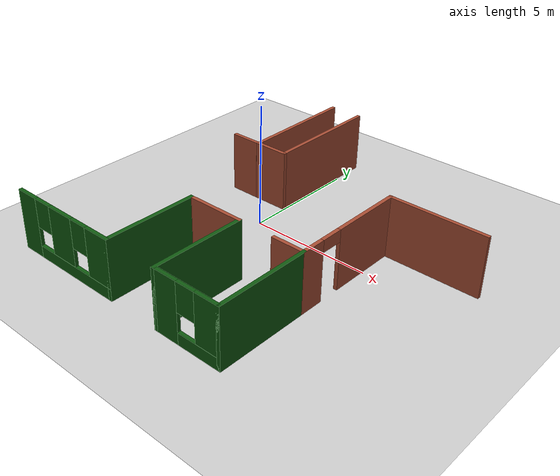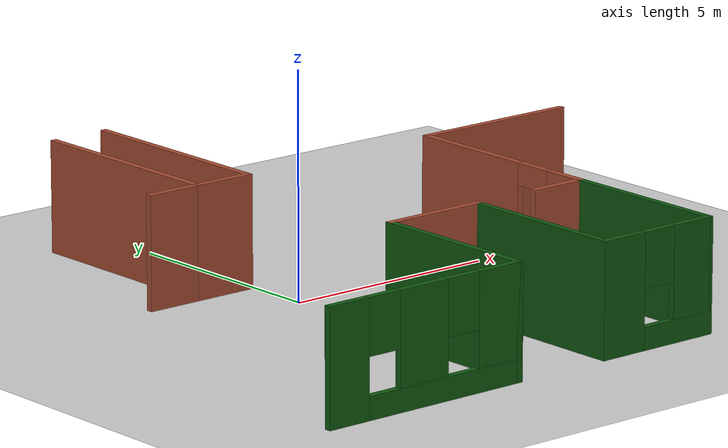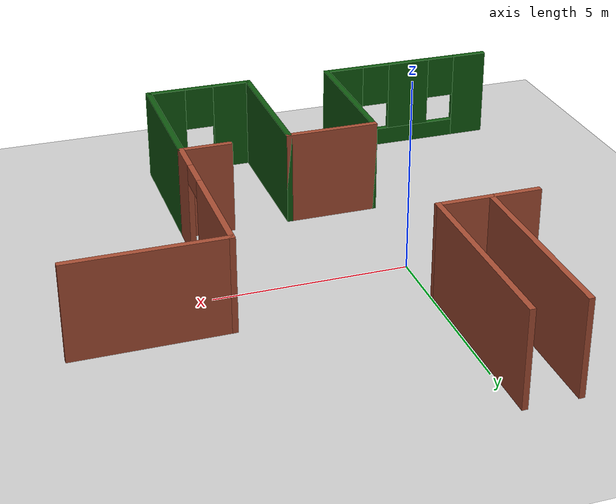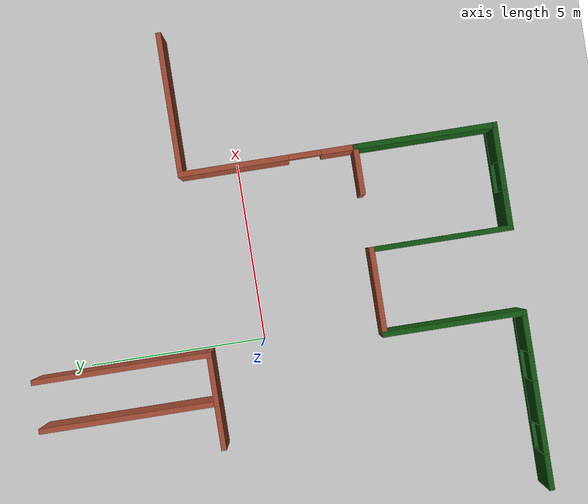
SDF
<sdf version="1.6">
 <world name="default">
  <model name="ground_plane">
   <static>1</static>
   <link name="link">
    <collision name="collision">
     <geometry><plane><normal>0 0 1</normal><size>100 100</size></plane></geometry>
     <surface>
      <contact><collide_bitmask>65535</collide_bitmask></contact>
      <friction><ode><mu>100</mu><mu2>50</mu2></ode></friction>
     </surface>
    </collision>
    <visual name="visual">
     <cast_shadows>0</cast_shadows>
     <geometry><plane><normal>0 0 1</normal><size>100 100</size></plane></geometry>
     <material>
      <script><uri>file://media/materials/scripts/gazebo.material</uri><name>Gazebo/Grey</name></script>
     </material>
    </visual>
   </link>
  </model>
  <model name="apartment">
   <link name="Wall_0">
    <pose>-2.91418 -6.79442 0 0 -0 0</pose>
    <visual name="Wall_0_Visual_0">
     <pose>-1.99956 0 1.25 0 -0 0</pose>
     <geometry><box><size>1.00087 0.15 2.5</size></box></geometry>
     <material>
      <script><uri>file://media/materials/scripts/gazebo.material</uri><name>Gazebo/Grey</name></script>
      <ambient>0.0627451 0.352941 0.0627451 1</ambient>
     </material>
     <meta><layer>0</layer></meta>
    </visual>
    <visual name="Wall_0_Visual_1">
     <pose>0.500436 0 0.25 0 -0 0</pose>
     <geometry><box><size>3.99913 0.15 0.5</size></box></geometry>
     <material>
      <script><uri>file://media/materials/scripts/gazebo.material</uri><name>Gazebo/Grey</name></script>
      <ambient>0.0627451 0.352941 0.0627451 1</ambient>
     </material>
     <meta><layer>0</layer></meta>
    </visual>
    <visual name="Wall_0_Visual_2">
     <pose>-0.080142 0 1.5 0 -0 0</pose>
     <geometry><box><size>1.23797 0.15 2</size></box></geometry>
     <material>
      <script><uri>file://media/materials/scripts/gazebo.material</uri><name>Gazebo/Grey</name></script>
      <ambient>0.0627451 0.352941 0.0627451 1</ambient>
     </material>
     <meta><layer>0</layer></meta>
    </visual>
    <visual name="Wall_0_Visual_3">
     <pose>1.91942 0 1.5 0 -0 0</pose>
     <geometry><box><size>1.16116 0.15 2</size></box></geometry>
     <material>
      <script><uri>file://media/materials/scripts/gazebo.material</uri><name>Gazebo/Grey</name></script>
      <ambient>0.0627451 0.352941 0.0627451 1</ambient>
     </material>
     <meta><layer>0</layer></meta>
    </visual>
    <visual name="Wall_0_Visual_4">
     <pose>-1.09913 0 1.9 0 -0 0</pose>
     <geometry><box><size>0.8 0.15 1.2</size></box></geometry>
     <material>
      <script><uri>file://media/materials/scripts/gazebo.material</uri><name>Gazebo/Grey</name></script>
      <ambient>0.0627451 0.352941 0.0627451 1</ambient>
     </material>
     <meta><layer>0</layer></meta>
    </visual>
    <visual name="Wall_0_Visual_5">
     <pose>0.938844 0 1.9 0 -0 0</pose>
     <geometry><box><size>0.8 0.15 1.2</size></box></geometry>
     <material>
      <script><uri>file://media/materials/scripts/gazebo.material</uri><name>Gazebo/Grey</name></script>
      <ambient>0.0627451 0.352941 0.0627451 1</ambient>
     </material>
     <meta><layer>0</layer></meta>
    </visual>
    <collision name="Wall_0_Collision_0">
     <pose>-1.99956 0 1.25 0 -0 0</pose>
     <geometry><box><size>1.00087 0.15 2.5</size></box></geometry>
     <surface>
      <friction>
       <ode><mu>1</mu><mu2>1</mu2><fdir1>0 0 0</fdir1><slip1>0</slip1><slip2>0</slip2></ode>
       <torsional>
        <coefficient>1</coefficient>
        <patch_radius>0</patch_radius>
        <surface_radius>0</surface_radius>
        <use_patch_radius>1</use_patch_radius>
        <ode><slip>0</slip></ode>
       </torsional>
      </friction>
      <bounce><restitution_coefficient>0</restitution_coefficient><threshold>1e+06</threshold></bounce>
      <contact>
       <collide_without_contact>0</collide_without_contact>
       <collide_without_contact_bitmask>1</collide_without_contact_bitmask>
       <collide_bitmask>1</collide_bitmask>
       <ode>
        <soft_cfm>0</soft_cfm>
        <soft_erp>0.2</soft_erp>
        <kp>1e+13</kp>
        <kd>1</kd>
        <max_vel>0.01</max_vel>
        <min_depth>0</min_depth>
       </ode>
       <bullet>
        <split_impulse>1</split_impulse>
        <split_impulse_penetration_threshold>-0.01</split_impulse_penetration_threshold>
        <soft_cfm>0</soft_cfm>
        <soft_erp>0.2</soft_erp>
        <kp>1e+13</kp>
        <kd>1</kd>
       </bullet>
      </contact>
     </surface>
    </collision>
    <collision name="Wall_0_Collision_1">
     <pose>0.500436 0 0.25 0 -0 0</pose>
     <geometry><box><size>3.99913 0.15 0.5</size></box></geometry>
     <surface>
      <friction>
       <ode><mu>1</mu><mu2>1</mu2><fdir1>0 0 0</fdir1><slip1>0</slip1><slip2>0</slip2></ode>
       <torsional>
        <coefficient>1</coefficient>
        <patch_radius>0</patch_radius>
        <surface_radius>0</surface_radius>
        <use_patch_radius>1</use_patch_radius>
        <ode><slip>0</slip></ode>
       </torsional>
      </friction>
      <bounce><restitution_coefficient>0</restitution_coefficient><threshold>1e+06</threshold></bounce>
      <contact>
       <collide_without_contact>0</collide_without_contact>
       <collide_without_contact_bitmask>1</collide_without_contact_bitmask>
       <collide_bitmask>1</collide_bitmask>
       <ode>
        <soft_cfm>0</soft_cfm>
        <soft_erp>0.2</soft_erp>
        <kp>1e+13</kp>
        <kd>1</kd>
        <max_vel>0.01</max_vel>
        <min_depth>0</min_depth>
       </ode>
       <bullet>
        <split_impulse>1</split_impulse>
        <split_impulse_penetration_threshold>-0.01</split_impulse_penetration_threshold>
        <soft_cfm>0</soft_cfm>
        <soft_erp>0.2</soft_erp>
        <kp>1e+13</kp>
        <kd>1</kd>
       </bullet>
      </contact>
     </surface>
    </collision>
    <collision name="Wall_0_Collision_2">
     <pose>-0.080142 0 1.5 0 -0 0</pose>
     <geometry><box><size>1.23797 0.15 2</size></box></geometry>
     <surface>
      <friction>
       <ode><mu>1</mu><mu2>1</mu2><fdir1>0 0 0</fdir1><slip1>0</slip1><slip2>0</slip2></ode>
       <torsional>
        <coefficient>1</coefficient>
        <patch_radius>0</patch_radius>
        <surface_radius>0</surface_radius>
        <use_patch_radius>1</use_patch_radius>
        <ode><slip>0</slip></ode>
       </torsional>
      </friction>
      <bounce><restitution_coefficient>0</restitution_coefficient><threshold>1e+06</threshold></bounce>
      <contact>
       <collide_without_contact>0</collide_without_contact>
       <collide_without_contact_bitmask>1</collide_without_contact_bitmask>
       <collide_bitmask>1</collide_bitmask>
       <ode>
        <soft_cfm>0</soft_cfm>
        <soft_erp>0.2</soft_erp>
        <kp>1e+13</kp>
        <kd>1</kd>
        <max_vel>0.01</max_vel>
        <min_depth>0</min_depth>
       </ode>
       <bullet>
        <split_impulse>1</split_impulse>
        <split_impulse_penetration_threshold>-0.01</split_impulse_penetration_threshold>
        <soft_cfm>0</soft_cfm>
        <soft_erp>0.2</soft_erp>
        <kp>1e+13</kp>
        <kd>1</kd>
       </bullet>
      </contact>
     </surface>
    </collision>
    <collision name="Wall_0_Collision_3">
     <pose>1.91942 0 1.5 0 -0 0</pose>
     <geometry><box><size>1.16116 0.15 2</size></box></geometry>
     <surface>
      <friction>
       <ode><mu>1</mu><mu2>1</mu2><fdir1>0 0 0</fdir1><slip1>0</slip1><slip2>0</slip2></ode>
       <torsional>
        <coefficient>1</coefficient>
        <patch_radius>0</patch_radius>
        <surface_radius>0</surface_radius>
        <use_patch_radius>1</use_patch_radius>
        <ode><slip>0</slip></ode>
       </torsional>
      </friction>
      <bounce><restitution_coefficient>0</restitution_coefficient><threshold>1e+06</threshold></bounce>
      <contact>
       <collide_without_contact>0</collide_without_contact>
       <collide_without_contact_bitmask>1</collide_without_contact_bitmask>
       <collide_bitmask>1</collide_bitmask>
       <ode>
        <soft_cfm>0</soft_cfm>
        <soft_erp>0.2</soft_erp>
        <kp>1e+13</kp>
        <kd>1</kd>
        <max_vel>0.01</max_vel>
        <min_depth>0</min_depth>
       </ode>
       <bullet>
        <split_impulse>1</split_impulse>
        <split_impulse_penetration_threshold>-0.01</split_impulse_penetration_threshold>
        <soft_cfm>0</soft_cfm>
        <soft_erp>0.2</soft_erp>
        <kp>1e+13</kp>
        <kd>1</kd>
       </bullet>
      </contact>
     </surface>
    </collision>
    <collision name="Wall_0_Collision_4">
     <pose>-1.09913 0 1.9 0 -0 0</pose>
     <geometry><box><size>0.8 0.15 1.2</size></box></geometry>
     <surface>
      <friction>
       <ode><mu>1</mu><mu2>1</mu2><fdir1>0 0 0</fdir1><slip1>0</slip1><slip2>0</slip2></ode>
       <torsional>
        <coefficient>1</coefficient>
        <patch_radius>0</patch_radius>
        <surface_radius>0</surface_radius>
        <use_patch_radius>1</use_patch_radius>
        <ode><slip>0</slip></ode>
       </torsional>
      </friction>
      <bounce><restitution_coefficient>0</restitution_coefficient><threshold>1e+06</threshold></bounce>
      <contact>
       <collide_without_contact>0</collide_without_contact>
       <collide_without_contact_bitmask>1</collide_without_contact_bitmask>
       <collide_bitmask>1</collide_bitmask>
       <ode>
        <soft_cfm>0</soft_cfm>
        <soft_erp>0.2</soft_erp>
        <kp>1e+13</kp>
        <kd>1</kd>
        <max_vel>0.01</max_vel>
        <min_depth>0</min_depth>
       </ode>
       <bullet>
        <split_impulse>1</split_impulse>
        <split_impulse_penetration_threshold>-0.01</split_impulse_penetration_threshold>
        <soft_cfm>0</soft_cfm>
        <soft_erp>0.2</soft_erp>
        <kp>1e+13</kp>
        <kd>1</kd>
       </bullet>
      </contact>
     </surface>
    </collision>
    <collision name="Wall_0_Collision_5">
     <pose>0.938844 0 1.9 0 -0 0</pose>
     <geometry><box><size>0.8 0.15 1.2</size></box></geometry>
     <surface>
      <friction>
       <ode><mu>1</mu><mu2>1</mu2><fdir1>0 0 0</fdir1><slip1>0</slip1><slip2>0</slip2></ode>
       <torsional>
        <coefficient>1</coefficient>
        <patch_radius>0</patch_radius>
        <surface_radius>0</surface_radius>
        <use_patch_radius>1</use_patch_radius>
        <ode><slip>0</slip></ode>
       </torsional>
      </friction>
      <bounce><restitution_coefficient>0</restitution_coefficient><threshold>1e+06</threshold></bounce>
      <contact>
       <collide_without_contact>0</collide_without_contact>
       <collide_without_contact_bitmask>1</collide_without_contact_bitmask>
       <collide_bitmask>1</collide_bitmask>
       <ode>
        <soft_cfm>0</soft_cfm>
        <soft_erp>0.2</soft_erp>
        <kp>1e+13</kp>
        <kd>1</kd>
        <max_vel>0.01</max_vel>
        <min_depth>0</min_depth>
       </ode>
       <bullet>
        <split_impulse>1</split_impulse>
        <split_impulse_penetration_threshold>-0.01</split_impulse_penetration_threshold>
        <soft_cfm>0</soft_cfm>
        <soft_erp>0.2</soft_erp>
        <kp>1e+13</kp>
        <kd>1</kd>
       </bullet>
      </contact>
     </surface>
    </collision>
   </link>
   <link name="Wall_1">
    <pose>-0.489182 -4.86942 0 0 -0 1.5708</pose>
    <visual name="Wall_1_Visual">
     <pose>0 0 1.25 0 -0 0</pose>
     <geometry><box><size>4 0.15 2.5</size></box></geometry>
     <material>
      <script><uri>file://media/materials/scripts/gazebo.material</uri><name>Gazebo/Grey</name></script>
      <ambient>0.0627451 0.352941 0.0627451 1</ambient>
     </material>
     <meta><layer>0</layer></meta>
    </visual>
    <collision name="Wall_1_Collision">
     <pose>0 0 1.25 0 -0 0</pose>
     <geometry><box><size>4 0.15 2.5</size></box></geometry>
     <surface>
      <friction>
       <ode><mu>1</mu><mu2>1</mu2><fdir1>0 0 0</fdir1><slip1>0</slip1><slip2>0</slip2></ode>
       <torsional>
        <coefficient>1</coefficient>
        <patch_radius>0</patch_radius>
        <surface_radius>0</surface_radius>
        <use_patch_radius>1</use_patch_radius>
        <ode><slip>0</slip></ode>
       </torsional>
      </friction>
      <bounce><restitution_coefficient>0</restitution_coefficient><threshold>1e+06</threshold></bounce>
      <contact>
       <collide_without_contact>0</collide_without_contact>
       <collide_without_contact_bitmask>1</collide_without_contact_bitmask>
       <collide_bitmask>1</collide_bitmask>
       <ode>
        <soft_cfm>0</soft_cfm>
        <soft_erp>0.2</soft_erp>
        <kp>1e+13</kp>
        <kd>1</kd>
        <max_vel>0.01</max_vel>
        <min_depth>0</min_depth>
       </ode>
       <bullet>
        <split_impulse>1</split_impulse>
        <split_impulse_penetration_threshold>-0.01</split_impulse_penetration_threshold>
        <soft_cfm>0</soft_cfm>
        <soft_erp>0.2</soft_erp>
        <kp>1e+13</kp>
        <kd>1</kd>
       </bullet>
      </contact>
     </surface>
    </collision>
   </link>
   <link name="Wall_13">
    <pose>4.71082 -0.519415 0 0 -0 1.5708</pose>
    <visual name="Wall_13_Visual_0">
     <pose>-1.98617 0 1.25 0 -0 0</pose>
     <geometry><box><size>1.02765 0.15 2.5</size></box></geometry>
     <material>
      <script><uri>file://media/materials/scripts/gazebo.material</uri><name>Gazebo/Bricks</name></script>
      <ambient>1 1 1 1</ambient>
     </material>
     <meta><layer>0</layer></meta>
    </visual>
    <visual name="Wall_13_Visual_1">
     <pose>0.963826 0 1.25 0 -0 0</pose>
     <geometry><box><size>3.07235 0.15 2.5</size></box></geometry>
     <material>
      <script><uri>file://media/materials/scripts/gazebo.material</uri><name>Gazebo/Bricks</name></script>
      <ambient>1 1 1 1</ambient>
     </material>
     <meta><layer>0</layer></meta>
    </visual>
    <visual name="Wall_13_Visual_2">
     <pose>-1.02235 0 2.25 0 -0 0</pose>
     <geometry><box><size>0.9 0.15 0.5</size></box></geometry>
     <material>
      <script><uri>file://media/materials/scripts/gazebo.material</uri><name>Gazebo/Bricks</name></script>
      <ambient>1 1 1 1</ambient>
     </material>
     <meta><layer>0</layer></meta>
    </visual>
    <collision name="Wall_13_Collision_0">
     <pose>-1.98617 0 1.25 0 -0 0</pose>
     <geometry><box><size>1.02765 0.15 2.5</size></box></geometry>
     <surface>
      <friction>
       <ode><mu>1</mu><mu2>1</mu2><fdir1>0 0 0</fdir1><slip1>0</slip1><slip2>0</slip2></ode>
       <torsional>
        <coefficient>1</coefficient>
        <patch_radius>0</patch_radius>
        <surface_radius>0</surface_radius>
        <use_patch_radius>1</use_patch_radius>
        <ode><slip>0</slip></ode>
       </torsional>
      </friction>
      <bounce><restitution_coefficient>0</restitution_coefficient><threshold>1e+06</threshold></bounce>
      <contact>
       <collide_without_contact>0</collide_without_contact>
       <collide_without_contact_bitmask>1</collide_without_contact_bitmask>
       <collide_bitmask>1</collide_bitmask>
       <ode>
        <soft_cfm>0</soft_cfm>
        <soft_erp>0.2</soft_erp>
        <kp>1e+13</kp>
        <kd>1</kd>
        <max_vel>0.01</max_vel>
        <min_depth>0</min_depth>
       </ode>
       <bullet>
        <split_impulse>1</split_impulse>
        <split_impulse_penetration_threshold>-0.01</split_impulse_penetration_threshold>
        <soft_cfm>0</soft_cfm>
        <soft_erp>0.2</soft_erp>
        <kp>1e+13</kp>
        <kd>1</kd>
       </bullet>
      </contact>
     </surface>
    </collision>
    <collision name="Wall_13_Collision_1">
     <pose>0.963826 0 1.25 0 -0 0</pose>
     <geometry><box><size>3.07235 0.15 2.5</size></box></geometry>
     <surface>
      <friction>
       <ode><mu>1</mu><mu2>1</mu2><fdir1>0 0 0</fdir1><slip1>0</slip1><slip2>0</slip2></ode>
       <torsional>
        <coefficient>1</coefficient>
        <patch_radius>0</patch_radius>
        <surface_radius>0</surface_radius>
        <use_patch_radius>1</use_patch_radius>
        <ode><slip>0</slip></ode>
       </torsional>
      </friction>
      <bounce><restitution_coefficient>0</restitution_coefficient><threshold>1e+06</threshold></bounce>
      <contact>
       <collide_without_contact>0</collide_without_contact>
       <collide_without_contact_bitmask>1</collide_without_contact_bitmask>
       <collide_bitmask>1</collide_bitmask>
       <ode>
        <soft_cfm>0</soft_cfm>
        <soft_erp>0.2</soft_erp>
        <kp>1e+13</kp>
        <kd>1</kd>
        <max_vel>0.01</max_vel>
        <min_depth>0</min_depth>
       </ode>
       <bullet>
        <split_impulse>1</split_impulse>
        <split_impulse_penetration_threshold>-0.01</split_impulse_penetration_threshold>
        <soft_cfm>0</soft_cfm>
        <soft_erp>0.2</soft_erp>
        <kp>1e+13</kp>
        <kd>1</kd>
       </bullet>
      </contact>
     </surface>
    </collision>
    <collision name="Wall_13_Collision_2">
     <pose>-1.02235 0 2.25 0 -0 0</pose>
     <geometry><box><size>0.9 0.15 0.5</size></box></geometry>
     <surface>
      <friction>
       <ode><mu>1</mu><mu2>1</mu2><fdir1>0 0 0</fdir1><slip1>0</slip1><slip2>0</slip2></ode>
       <torsional>
        <coefficient>1</coefficient>
        <patch_radius>0</patch_radius>
        <surface_radius>0</surface_radius>
        <use_patch_radius>1</use_patch_radius>
        <ode><slip>0</slip></ode>
       </torsional>
      </friction>
      <bounce><restitution_coefficient>0</restitution_coefficient><threshold>1e+06</threshold></bounce>
      <contact>
       <collide_without_contact>0</collide_without_contact>
       <collide_without_contact_bitmask>1</collide_without_contact_bitmask>
       <collide_bitmask>1</collide_bitmask>
       <ode>
        <soft_cfm>0</soft_cfm>
        <soft_erp>0.2</soft_erp>
        <kp>1e+13</kp>
        <kd>1</kd>
        <max_vel>0.01</max_vel>
        <min_depth>0</min_depth>
       </ode>
       <bullet>
        <split_impulse>1</split_impulse>
        <split_impulse_penetration_threshold>-0.01</split_impulse_penetration_threshold>
        <soft_cfm>0</soft_cfm>
        <soft_erp>0.2</soft_erp>
        <kp>1e+13</kp>
        <kd>1</kd>
       </bullet>
      </contact>
     </surface>
    </collision>
   </link>
   <link name="Wall_14">
    <pose>6.63582 1.90558 0 0 -0 0</pose>
    <visual name="Wall_14_Visual">
     <pose>0 0 1.25 0 -0 0</pose>
     <geometry><box><size>4 0.15 2.5</size></box></geometry>
     <material>
      <script><uri>file://media/materials/scripts/gazebo.material</uri><name>Gazebo/Bricks</name></script>
      <ambient>1 1 1 1</ambient>
     </material>
     <meta><layer>0</layer></meta>
    </visual>
    <collision name="Wall_14_Collision">
     <pose>0 0 1.25 0 -0 0</pose>
     <geometry><box><size>4 0.15 2.5</size></box></geometry>
     <surface>
      <friction>
       <ode><mu>1</mu><mu2>1</mu2><fdir1>0 0 0</fdir1><slip1>0</slip1><slip2>0</slip2></ode>
       <torsional>
        <coefficient>1</coefficient>
        <patch_radius>0</patch_radius>
        <surface_radius>0</surface_radius>
        <use_patch_radius>1</use_patch_radius>
        <ode><slip>0</slip></ode>
       </torsional>
      </friction>
      <bounce><restitution_coefficient>0</restitution_coefficient><threshold>1e+06</threshold></bounce>
      <contact>
       <collide_without_contact>0</collide_without_contact>
       <collide_without_contact_bitmask>1</collide_without_contact_bitmask>
       <collide_bitmask>1</collide_bitmask>
       <ode>
        <soft_cfm>0</soft_cfm>
        <soft_erp>0.2</soft_erp>
        <kp>1e+13</kp>
        <kd>1</kd>
        <max_vel>0.01</max_vel>
        <min_depth>0</min_depth>
       </ode>
       <bullet>
        <split_impulse>1</split_impulse>
        <split_impulse_penetration_threshold>-0.01</split_impulse_penetration_threshold>
        <soft_cfm>0</soft_cfm>
        <soft_erp>0.2</soft_erp>
        <kp>1e+13</kp>
        <kd>1</kd>
       </bullet>
      </contact>
     </surface>
    </collision>
   </link>
   <link name="Wall_17">
    <pose>-0.289182 4.33059 0 0 0 -1.5708</pose>
    <visual name="Wall_17_Visual">
     <pose>0 0 1.25 0 -0 0</pose>
     <geometry><box><size>5 0.15 2.5</size></box></geometry>
     <material>
      <script><uri>file://media/materials/scripts/gazebo.material</uri><name>Gazebo/Bricks</name></script>
      <ambient>1 1 1 1</ambient>
     </material>
     <meta><layer>0</layer></meta>
    </visual>
    <collision name="Wall_17_Collision">
     <pose>0 0 1.25 0 -0 0</pose>
     <geometry><box><size>5 0.15 2.5</size></box></geometry>
     <surface>
      <friction>
       <ode><mu>1</mu><mu2>1</mu2><fdir1>0 0 0</fdir1><slip1>0</slip1><slip2>0</slip2></ode>
       <torsional>
        <coefficient>1</coefficient>
        <patch_radius>0</patch_radius>
        <surface_radius>0</surface_radius>
        <use_patch_radius>1</use_patch_radius>
        <ode><slip>0</slip></ode>
       </torsional>
      </friction>
      <bounce><restitution_coefficient>0</restitution_coefficient><threshold>1e+06</threshold></bounce>
      <contact>
       <collide_without_contact>0</collide_without_contact>
       <collide_without_contact_bitmask>1</collide_without_contact_bitmask>
       <collide_bitmask>1</collide_bitmask>
       <ode>
        <soft_cfm>0</soft_cfm>
        <soft_erp>0.2</soft_erp>
        <kp>1e+13</kp>
        <kd>1</kd>
        <max_vel>0.01</max_vel>
        <min_depth>0</min_depth>
       </ode>
       <bullet>
        <split_impulse>1</split_impulse>
        <split_impulse_penetration_threshold>-0.01</split_impulse_penetration_threshold>
        <soft_cfm>0</soft_cfm>
        <soft_erp>0.2</soft_erp>
        <kp>1e+13</kp>
        <kd>1</kd>
       </bullet>
      </contact>
     </surface>
    </collision>
   </link>
   <link name="Wall_18">
    <pose>-0.964182 1.90558 0 0 -0 3.14159</pose>
    <visual name="Wall_18_Visual">
     <pose>0 0 1.25 0 -0 0</pose>
     <geometry><box><size>1.5 0.15 2.5</size></box></geometry>
     <material>
      <script><uri>file://media/materials/scripts/gazebo.material</uri><name>Gazebo/Bricks</name></script>
      <ambient>1 1 1 1</ambient>
     </material>
     <meta><layer>0</layer></meta>
    </visual>
    <collision name="Wall_18_Collision">
     <pose>0 0 1.25 0 -0 0</pose>
     <geometry><box><size>1.5 0.15 2.5</size></box></geometry>
     <surface>
      <friction>
       <ode><mu>1</mu><mu2>1</mu2><fdir1>0 0 0</fdir1><slip1>0</slip1><slip2>0</slip2></ode>
       <torsional>
        <coefficient>1</coefficient>
        <patch_radius>0</patch_radius>
        <surface_radius>0</surface_radius>
        <use_patch_radius>1</use_patch_radius>
        <ode><slip>0</slip></ode>
       </torsional>
      </friction>
      <bounce><restitution_coefficient>0</restitution_coefficient><threshold>1e+06</threshold></bounce>
      <contact>
       <collide_without_contact>0</collide_without_contact>
       <collide_without_contact_bitmask>1</collide_without_contact_bitmask>
       <collide_bitmask>1</collide_bitmask>
       <ode>
        <soft_cfm>0</soft_cfm>
        <soft_erp>0.2</soft_erp>
        <kp>1e+13</kp>
        <kd>1</kd>
        <max_vel>0.01</max_vel>
        <min_depth>0</min_depth>
       </ode>
       <bullet>
        <split_impulse>1</split_impulse>
        <split_impulse_penetration_threshold>-0.01</split_impulse_penetration_threshold>
        <soft_cfm>0</soft_cfm>
        <soft_erp>0.2</soft_erp>
        <kp>1e+13</kp>
        <kd>1</kd>
       </bullet>
      </contact>
     </surface>
    </collision>
   </link>
   <link name="Wall_2">
    <pose>0.685818 -2.94442 0 0 -0 0</pose>
    <visual name="Wall_2_Visual">
     <pose>0 0 1.25 0 -0 0</pose>
     <geometry><box><size>2.5 0.15 2.5</size></box></geometry>
     <material>
      <script><uri>file://media/materials/scripts/gazebo.material</uri><name>Gazebo/Bricks</name></script>
      <ambient>1 1 1 1</ambient>
     </material>
     <meta><layer>0</layer></meta>
    </visual>
    <collision name="Wall_2_Collision">
     <pose>0 0 1.25 0 -0 0</pose>
     <geometry><box><size>2.5 0.15 2.5</size></box></geometry>
     <surface>
      <friction>
       <ode><mu>1</mu><mu2>1</mu2><fdir1>0 0 0</fdir1><slip1>0</slip1><slip2>0</slip2></ode>
       <torsional>
        <coefficient>1</coefficient>
        <patch_radius>0</patch_radius>
        <surface_radius>0</surface_radius>
        <use_patch_radius>1</use_patch_radius>
        <ode><slip>0</slip></ode>
       </torsional>
      </friction>
      <bounce><restitution_coefficient>0</restitution_coefficient><threshold>1e+06</threshold></bounce>
      <contact>
       <collide_without_contact>0</collide_without_contact>
       <collide_without_contact_bitmask>1</collide_without_contact_bitmask>
       <collide_bitmask>1</collide_bitmask>
       <ode>
        <soft_cfm>0</soft_cfm>
        <soft_erp>0.2</soft_erp>
        <kp>1e+13</kp>
        <kd>1</kd>
        <max_vel>0.01</max_vel>
        <min_depth>0</min_depth>
       </ode>
       <bullet>
        <split_impulse>1</split_impulse>
        <split_impulse_penetration_threshold>-0.01</split_impulse_penetration_threshold>
        <soft_cfm>0</soft_cfm>
        <soft_erp>0.2</soft_erp>
        <kp>1e+13</kp>
        <kd>1</kd>
       </bullet>
      </contact>
     </surface>
    </collision>
   </link>
   <link name="Wall_20">
    <pose>-1.63918 4.33059 0 0 -0 1.5708</pose>
    <visual name="Wall_20_Visual">
     <pose>0 0 1.25 0 -0 0</pose>
     <geometry><box><size>5 0.15 2.5</size></box></geometry>
     <material>
      <script><uri>file://media/materials/scripts/gazebo.material</uri><name>Gazebo/Bricks</name></script>
      <ambient>1 1 1 1</ambient>
     </material>
     <meta><layer>0</layer></meta>
    </visual>
    <collision name="Wall_20_Collision">
     <pose>0 0 1.25 0 -0 0</pose>
     <geometry><box><size>5 0.15 2.5</size></box></geometry>
     <surface>
      <friction>
       <ode><mu>1</mu><mu2>1</mu2><fdir1>0 0 0</fdir1><slip1>0</slip1><slip2>0</slip2></ode>
       <torsional>
        <coefficient>1</coefficient>
        <patch_radius>0</patch_radius>
        <surface_radius>0</surface_radius>
        <use_patch_radius>1</use_patch_radius>
        <ode><slip>0</slip></ode>
       </torsional>
      </friction>
      <bounce><restitution_coefficient>0</restitution_coefficient><threshold>1e+06</threshold></bounce>
      <contact>
       <collide_without_contact>0</collide_without_contact>
       <collide_without_contact_bitmask>1</collide_without_contact_bitmask>
       <collide_bitmask>1</collide_bitmask>
       <ode>
        <soft_cfm>0</soft_cfm>
        <soft_erp>0.2</soft_erp>
        <kp>1e+13</kp>
        <kd>1</kd>
        <max_vel>0.01</max_vel>
        <min_depth>0</min_depth>
       </ode>
       <bullet>
        <split_impulse>1</split_impulse>
        <split_impulse_penetration_threshold>-0.01</split_impulse_penetration_threshold>
        <soft_cfm>0</soft_cfm>
        <soft_erp>0.2</soft_erp>
        <kp>1e+13</kp>
        <kd>1</kd>
       </bullet>
      </contact>
     </surface>
    </collision>
   </link>
   <link name="Wall_3">
    <pose>1.86082 -4.86942 0 0 0 -1.5708</pose>
    <visual name="Wall_3_Visual">
     <pose>0 0 1.25 0 -0 0</pose>
     <geometry><box><size>4 0.15 2.5</size></box></geometry>
     <material>
      <script><uri>file://media/materials/scripts/gazebo.material</uri><name>Gazebo/Grey</name></script>
      <ambient>0.0627451 0.345098 0.0627451 1</ambient>
     </material>
     <meta><layer>0</layer></meta>
    </visual>
    <collision name="Wall_3_Collision">
     <pose>0 0 1.25 0 -0 0</pose>
     <geometry><box><size>4 0.15 2.5</size></box></geometry>
     <surface>
      <friction>
       <ode><mu>1</mu><mu2>1</mu2><fdir1>0 0 0</fdir1><slip1>0</slip1><slip2>0</slip2></ode>
       <torsional>
        <coefficient>1</coefficient>
        <patch_radius>0</patch_radius>
        <surface_radius>0</surface_radius>
        <use_patch_radius>1</use_patch_radius>
        <ode><slip>0</slip></ode>
       </torsional>
      </friction>
      <bounce><restitution_coefficient>0</restitution_coefficient><threshold>1e+06</threshold></bounce>
      <contact>
       <collide_without_contact>0</collide_without_contact>
       <collide_without_contact_bitmask>1</collide_without_contact_bitmask>
       <collide_bitmask>1</collide_bitmask>
       <ode>
        <soft_cfm>0</soft_cfm>
        <soft_erp>0.2</soft_erp>
        <kp>1e+13</kp>
        <kd>1</kd>
        <max_vel>0.01</max_vel>
        <min_depth>0</min_depth>
       </ode>
       <bullet>
        <split_impulse>1</split_impulse>
        <split_impulse_penetration_threshold>-0.01</split_impulse_penetration_threshold>
        <soft_cfm>0</soft_cfm>
        <soft_erp>0.2</soft_erp>
        <kp>1e+13</kp>
        <kd>1</kd>
       </bullet>
      </contact>
     </surface>
    </collision>
   </link>
   <link name="Wall_4">
    <pose>3.28582 -6.79442 0 0 -0 0</pose>
    <visual name="Wall_4_Visual_0">
     <pose>-0.94186 0 1.25 0 -0 0</pose>
     <geometry><box><size>1.11628 0.15 2.5</size></box></geometry>
     <material>
      <script><uri>file://media/materials/scripts/gazebo.material</uri><name>Gazebo/Grey</name></script>
      <ambient>0.0627451 0.345098 0.0627451 1</ambient>
     </material>
     <meta><layer>0</layer></meta>
    </visual>
    <visual name="Wall_4_Visual_1">
     <pose>0.55814 0 0.25 0 -0 0</pose>
     <geometry><box><size>1.88372 0.15 0.5</size></box></geometry>
     <material>
      <script><uri>file://media/materials/scripts/gazebo.material</uri><name>Gazebo/Grey</name></script>
      <ambient>0.0627451 0.345098 0.0627451 1</ambient>
     </material>
     <meta><layer>0</layer></meta>
    </visual>
    <visual name="Wall_4_Visual_2">
     <pose>0.95814 0 1.5 0 -0 0</pose>
     <geometry><box><size>1.08372 0.15 2</size></box></geometry>
     <material>
      <script><uri>file://media/materials/scripts/gazebo.material</uri><name>Gazebo/Grey</name></script>
      <ambient>0.0627451 0.345098 0.0627451 1</ambient>
     </material>
     <meta><layer>0</layer></meta>
    </visual>
    <visual name="Wall_4_Visual_3">
     <pose>0.016281 0 1.9 0 -0 0</pose>
     <geometry><box><size>0.8 0.15 1.2</size></box></geometry>
     <material>
      <script><uri>file://media/materials/scripts/gazebo.material</uri><name>Gazebo/Grey</name></script>
      <ambient>0.0627451 0.345098 0.0627451 1</ambient>
     </material>
     <meta><layer>0</layer></meta>
    </visual>
    <collision name="Wall_4_Collision_0">
     <pose>-0.94186 0 1.25 0 -0 0</pose>
     <geometry><box><size>1.11628 0.15 2.5</size></box></geometry>
     <surface>
      <friction>
       <ode><mu>1</mu><mu2>1</mu2><fdir1>0 0 0</fdir1><slip1>0</slip1><slip2>0</slip2></ode>
       <torsional>
        <coefficient>1</coefficient>
        <patch_radius>0</patch_radius>
        <surface_radius>0</surface_radius>
        <use_patch_radius>1</use_patch_radius>
        <ode><slip>0</slip></ode>
       </torsional>
      </friction>
      <bounce><restitution_coefficient>0</restitution_coefficient><threshold>1e+06</threshold></bounce>
      <contact>
       <collide_without_contact>0</collide_without_contact>
       <collide_without_contact_bitmask>1</collide_without_contact_bitmask>
       <collide_bitmask>1</collide_bitmask>
       <ode>
        <soft_cfm>0</soft_cfm>
        <soft_erp>0.2</soft_erp>
        <kp>1e+13</kp>
        <kd>1</kd>
        <max_vel>0.01</max_vel>
        <min_depth>0</min_depth>
       </ode>
       <bullet>
        <split_impulse>1</split_impulse>
        <split_impulse_penetration_threshold>-0.01</split_impulse_penetration_threshold>
        <soft_cfm>0</soft_cfm>
        <soft_erp>0.2</soft_erp>
        <kp>1e+13</kp>
        <kd>1</kd>
       </bullet>
      </contact>
     </surface>
    </collision>
    <collision name="Wall_4_Collision_1">
     <pose>0.55814 0 0.25 0 -0 0</pose>
     <geometry><box><size>1.88372 0.15 0.5</size></box></geometry>
     <surface>
      <friction>
       <ode><mu>1</mu><mu2>1</mu2><fdir1>0 0 0</fdir1><slip1>0</slip1><slip2>0</slip2></ode>
       <torsional>
        <coefficient>1</coefficient>
        <patch_radius>0</patch_radius>
        <surface_radius>0</surface_radius>
        <use_patch_radius>1</use_patch_radius>
        <ode><slip>0</slip></ode>
       </torsional>
      </friction>
      <bounce><restitution_coefficient>0</restitution_coefficient><threshold>1e+06</threshold></bounce>
      <contact>
       <collide_without_contact>0</collide_without_contact>
       <collide_without_contact_bitmask>1</collide_without_contact_bitmask>
       <collide_bitmask>1</collide_bitmask>
       <ode>
        <soft_cfm>0</soft_cfm>
        <soft_erp>0.2</soft_erp>
        <kp>1e+13</kp>
        <kd>1</kd>
        <max_vel>0.01</max_vel>
        <min_depth>0</min_depth>
       </ode>
       <bullet>
        <split_impulse>1</split_impulse>
        <split_impulse_penetration_threshold>-0.01</split_impulse_penetration_threshold>
        <soft_cfm>0</soft_cfm>
        <soft_erp>0.2</soft_erp>
        <kp>1e+13</kp>
        <kd>1</kd>
       </bullet>
      </contact>
     </surface>
    </collision>
    <collision name="Wall_4_Collision_2">
     <pose>0.95814 0 1.5 0 -0 0</pose>
     <geometry><box><size>1.08372 0.15 2</size></box></geometry>
     <surface>
      <friction>
       <ode><mu>1</mu><mu2>1</mu2><fdir1>0 0 0</fdir1><slip1>0</slip1><slip2>0</slip2></ode>
       <torsional>
        <coefficient>1</coefficient>
        <patch_radius>0</patch_radius>
        <surface_radius>0</surface_radius>
        <use_patch_radius>1</use_patch_radius>
        <ode><slip>0</slip></ode>
       </torsional>
      </friction>
      <bounce><restitution_coefficient>0</restitution_coefficient><threshold>1e+06</threshold></bounce>
      <contact>
       <collide_without_contact>0</collide_without_contact>
       <collide_without_contact_bitmask>1</collide_without_contact_bitmask>
       <collide_bitmask>1</collide_bitmask>
       <ode>
        <soft_cfm>0</soft_cfm>
        <soft_erp>0.2</soft_erp>
        <kp>1e+13</kp>
        <kd>1</kd>
        <max_vel>0.01</max_vel>
        <min_depth>0</min_depth>
       </ode>
       <bullet>
        <split_impulse>1</split_impulse>
        <split_impulse_penetration_threshold>-0.01</split_impulse_penetration_threshold>
        <soft_cfm>0</soft_cfm>
        <soft_erp>0.2</soft_erp>
        <kp>1e+13</kp>
        <kd>1</kd>
       </bullet>
      </contact>
     </surface>
    </collision>
    <collision name="Wall_4_Collision_3">
     <pose>0.016281 0 1.9 0 -0 0</pose>
     <geometry><box><size>0.8 0.15 1.2</size></box></geometry>
     <surface>
      <friction>
       <ode><mu>1</mu><mu2>1</mu2><fdir1>0 0 0</fdir1><slip1>0</slip1><slip2>0</slip2></ode>
       <torsional>
        <coefficient>1</coefficient>
        <patch_radius>0</patch_radius>
        <surface_radius>0</surface_radius>
        <use_patch_radius>1</use_patch_radius>
        <ode><slip>0</slip></ode>
       </torsional>
      </friction>
      <bounce><restitution_coefficient>0</restitution_coefficient><threshold>1e+06</threshold></bounce>
      <contact>
       <collide_without_contact>0</collide_without_contact>
       <collide_without_contact_bitmask>1</collide_without_contact_bitmask>
       <collide_bitmask>1</collide_bitmask>
       <ode>
        <soft_cfm>0</soft_cfm>
        <soft_erp>0.2</soft_erp>
        <kp>1e+13</kp>
        <kd>1</kd>
        <max_vel>0.01</max_vel>
        <min_depth>0</min_depth>
       </ode>
       <bullet>
        <split_impulse>1</split_impulse>
        <split_impulse_penetration_threshold>-0.01</split_impulse_penetration_threshold>
        <soft_cfm>0</soft_cfm>
        <soft_erp>0.2</soft_erp>
        <kp>1e+13</kp>
        <kd>1</kd>
       </bullet>
      </contact>
     </surface>
    </collision>
   </link>
   <link name="Wall_43">
    <pose>-2.31056 1.9022 0 0 -0 3.14159</pose>
    <inertial>
     <inertia><ixx>0</ixx><ixy>0</ixy><ixz>0</ixz><iyy>0</iyy><iyz>0</iyz><izz>0</izz></inertia>
     <mass>0</mass>
    </inertial>
    <visual name="Wall_43_Visual">
     <pose>0 0 1.25 0 -0 0</pose>
     <geometry><box><size>1.24418 0.15 2.5</size></box></geometry>
     <material>
      <script><uri>file://media/materials/scripts/gazebo.material</uri><name>Gazebo/Bricks</name></script>
      <ambient>1 1 1 1</ambient>
     </material>
     <meta><layer>0</layer></meta>
    </visual>
    <collision name="Wall_43_Collision">
     <pose>0 0 1.25 0 -0 0</pose>
     <geometry><box><size>1.24418 0.15 2.5</size></box></geometry>
     <surface>
      <friction>
       <ode><mu>1</mu><mu2>1</mu2><fdir1>0 0 0</fdir1><slip1>0</slip1><slip2>0</slip2></ode>
       <torsional>
        <coefficient>1</coefficient>
        <patch_radius>0</patch_radius>
        <surface_radius>0</surface_radius>
        <use_patch_radius>1</use_patch_radius>
        <ode><slip>0</slip></ode>
       </torsional>
      </friction>
      <bounce><restitution_coefficient>0</restitution_coefficient><threshold>1e+06</threshold></bounce>
      <contact>
       <collide_without_contact>0</collide_without_contact>
       <collide_without_contact_bitmask>1</collide_without_contact_bitmask>
       <collide_bitmask>1</collide_bitmask>
       <ode>
        <soft_cfm>0</soft_cfm>
        <soft_erp>0.2</soft_erp>
        <kp>1e+13</kp>
        <kd>1</kd>
        <max_vel>0.01</max_vel>
        <min_depth>0</min_depth>
       </ode>
       <bullet>
        <split_impulse>1</split_impulse>
        <split_impulse_penetration_threshold>-0.01</split_impulse_penetration_threshold>
        <soft_cfm>0</soft_cfm>
        <soft_erp>0.2</soft_erp>
        <kp>1e+13</kp>
        <kd>1</kd>
       </bullet>
      </contact>
     </surface>
    </collision>
   </link>
   <link name="Wall_5">
    <pose>4.71082 -4.86942 0 0 -0 1.5708</pose>
    <visual name="Wall_5_Visual">
     <pose>0 0 1.25 0 -0 0</pose>
     <geometry><box><size>4 0.15 2.5</size></box></geometry>
     <material>
      <script><uri>file://media/materials/scripts/gazebo.material</uri><name>Gazebo/Grey</name></script>
      <ambient>0.0627451 0.345098 0.0627451 1</ambient>
     </material>
     <meta><layer>0</layer></meta>
    </visual>
    <collision name="Wall_5_Collision">
     <pose>0 0 1.25 0 -0 0</pose>
     <geometry><box><size>4 0.15 2.5</size></box></geometry>
     <surface>
      <friction>
       <ode><mu>1</mu><mu2>1</mu2><fdir1>0 0 0</fdir1><slip1>0</slip1><slip2>0</slip2></ode>
       <torsional>
        <coefficient>1</coefficient>
        <patch_radius>0</patch_radius>
        <surface_radius>0</surface_radius>
        <use_patch_radius>1</use_patch_radius>
        <ode><slip>0</slip></ode>
       </torsional>
      </friction>
      <bounce><restitution_coefficient>0</restitution_coefficient><threshold>1e+06</threshold></bounce>
      <contact>
       <collide_without_contact>0</collide_without_contact>
       <collide_without_contact_bitmask>1</collide_without_contact_bitmask>
       <collide_bitmask>1</collide_bitmask>
       <ode>
        <soft_cfm>0</soft_cfm>
        <soft_erp>0.2</soft_erp>
        <kp>1e+13</kp>
        <kd>1</kd>
        <max_vel>0.01</max_vel>
        <min_depth>0</min_depth>
       </ode>
       <bullet>
        <split_impulse>1</split_impulse>
        <split_impulse_penetration_threshold>-0.01</split_impulse_penetration_threshold>
        <soft_cfm>0</soft_cfm>
        <soft_erp>0.2</soft_erp>
        <kp>1e+13</kp>
        <kd>1</kd>
       </bullet>
      </contact>
     </surface>
    </collision>
   </link>
   <link name="Wall_6">
    <pose>4.0118 -2.94442 0 0 -0 3.14159</pose>
    <inertial>
     <inertia><ixx>0</ixx><ixy>0</ixy><ixz>0</ixz><iyy>0</iyy><iyz>0</iyz><izz>0</izz></inertia>
     <mass>0</mass>
    </inertial>
    <visual name="Wall_6_Visual">
     <pose>0 0 1.25 0 -0 0</pose>
     <geometry><box><size>1.26058 0.15 2.5</size></box></geometry>
     <material>
      <script><uri>file://media/materials/scripts/gazebo.material</uri><name>Gazebo/Bricks</name></script>
      <ambient>1 1 1 1</ambient>
     </material>
     <meta><layer>0</layer></meta>
    </visual>
    <collision name="Wall_6_Collision">
     <pose>0 0 1.25 0 -0 0</pose>
     <geometry><box><size>1.26058 0.15 2.5</size></box></geometry>
     <surface>
      <friction>
       <ode><mu>1</mu><mu2>1</mu2><fdir1>0 0 0</fdir1><slip1>0</slip1><slip2>0</slip2></ode>
       <torsional>
        <coefficient>1</coefficient>
        <patch_radius>0</patch_radius>
        <surface_radius>0</surface_radius>
        <use_patch_radius>1</use_patch_radius>
        <ode><slip>0</slip></ode>
       </torsional>
      </friction>
      <bounce><restitution_coefficient>0</restitution_coefficient><threshold>1e+06</threshold></bounce>
      <contact>
       <collide_without_contact>0</collide_without_contact>
       <collide_without_contact_bitmask>1</collide_without_contact_bitmask>
       <collide_bitmask>1</collide_bitmask>
       <ode>
        <soft_cfm>0</soft_cfm>
        <soft_erp>0.2</soft_erp>
        <kp>1e+13</kp>
        <kd>1</kd>
        <max_vel>0.01</max_vel>
        <min_depth>0</min_depth>
       </ode>
       <bullet>
        <split_impulse>1</split_impulse>
        <split_impulse_penetration_threshold>-0.01</split_impulse_penetration_threshold>
        <soft_cfm>0</soft_cfm>
        <soft_erp>0.2</soft_erp>
        <kp>1e+13</kp>
        <kd>1</kd>
       </bullet>
      </contact>
     </surface>
    </collision>
   </link>
   <static>1</static>
   <pose>0.16206 -0.380109 0 0 -0 0</pose>
  </model>
 </world>
</sdf>
